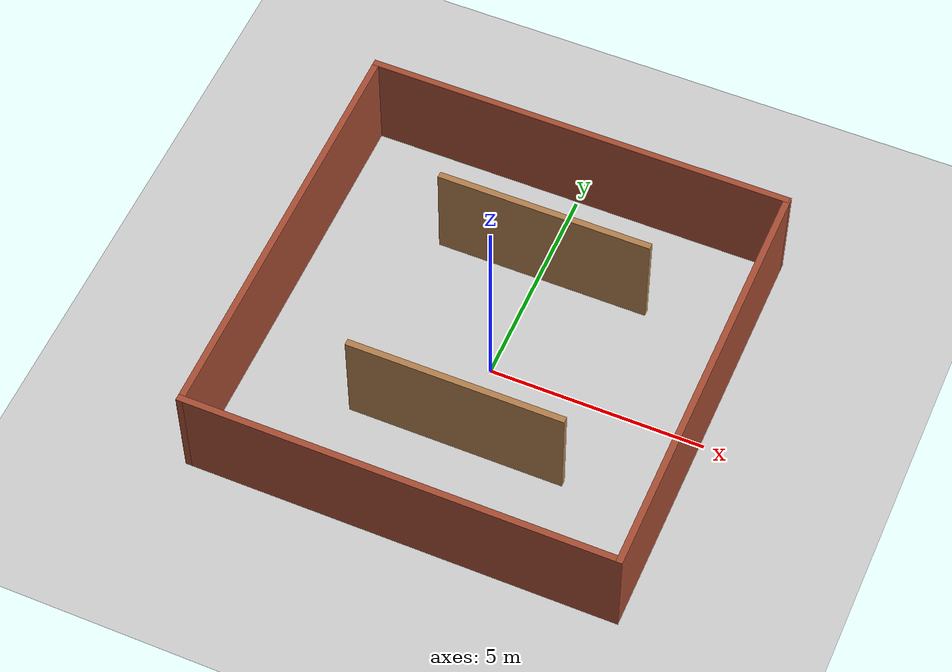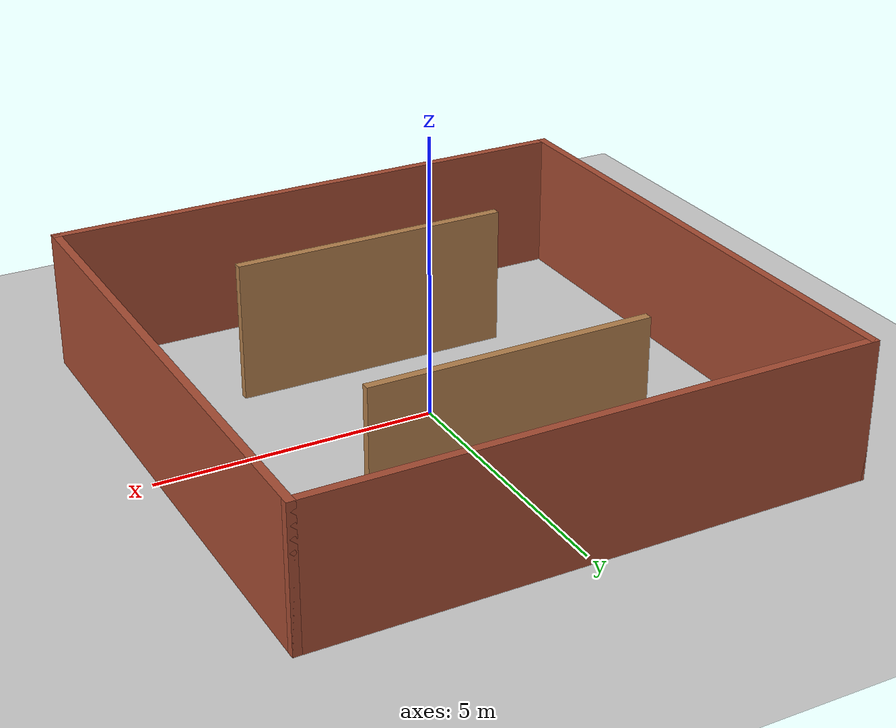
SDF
<sdf version="1.7">
 <world name="default">
  <light name="sun" type="directional">
   <pose>0 0 10 0 -0 0</pose>
   <diffuse>0.8 0.8 0.8 1</diffuse>
   <specular>0.2 0.2 0.2 1</specular>
   <attenuation>
    <range>1000</range>
    <constant>0.9</constant>
    <linear>0.01</linear>
    <quadratic>0.001</quadratic>
   </attenuation>
   <direction>-0.5 0.1 -0.9</direction>
   <spot><inner_angle>0</inner_angle><outer_angle>0</outer_angle><falloff>0</falloff></spot>
  </light>
  <model name="ground_plane">
   <static>1</static>
   <link name="link">
    <collision name="collision">
     <geometry><plane><normal>0 0 1</normal><size>100 100</size></plane></geometry>
     <surface>
      <contact><collide_bitmask>65535</collide_bitmask></contact>
      <friction><ode><mu>100</mu><mu2>50</mu2></ode></friction>
     </surface>
    </collision>
    <visual name="visual">
     <cast_shadows>0</cast_shadows>
     <geometry><plane><normal>0 0 1</normal><size>100 100</size></plane></geometry>
     <material>
      <script><uri>file://media/materials/scripts/gazebo.material</uri><name>Gazebo/Grey</name></script>
     </material>
    </visual>
   </link>
  </model>
  <gravity>0 0 -9.8</gravity>
  <magnetic_field>6e-06 2.3e-05 -4.2e-05</magnetic_field>
  <atmosphere type="adiabatic"/>
  <physics type="ode">
   <max_step_size>0.001</max_step_size>
   <real_time_factor>1</real_time_factor>
   <real_time_update_rate>1000</real_time_update_rate>
  </physics>
  <scene><ambient>0.4 0.4 0.4 1</ambient><background>0.7 0.7 0.7 1</background><shadows>1</shadows></scene>
  <spherical_coordinates>
   <surface_model>EARTH_WGS84</surface_model>
   <latitude_deg>0</latitude_deg>
   <longitude_deg>0</longitude_deg>
   <elevation>0</elevation>
   <heading_deg>0</heading_deg>
  </spherical_coordinates>
  <model name="stage">
   <pose>-0.085 0.225 0 0 -0 0</pose>
   <link name="Wall_1">
    <collision name="Wall_1_Collision">
     <geometry><box><size>10 0.15 2.5</size></box></geometry>
     <pose>0 0 1.25 0 -0 0</pose>
    </collision>
    <visual name="Wall_1_Visual">
     <pose>0 0 1.25 0 -0 0</pose>
     <geometry><box><size>10 0.15 2.5</size></box></geometry>
     <material>
      <script><uri>file://media/materials/scripts/gazebo.material</uri><name>Gazebo/Bricks</name></script>
      <ambient>1 1 1 1</ambient>
     </material>
     <meta><layer>0</layer></meta>
    </visual>
    <pose>0 4.925 0 0 -0 0</pose>
   </link>
   <link name="Wall_11">
    <collision name="Wall_11_Collision">
     <geometry><box><size>10 0.15 2.5</size></box></geometry>
     <pose>0 0 1.25 0 -0 0</pose>
    </collision>
    <visual name="Wall_11_Visual">
     <pose>0 0 1.25 0 -0 0</pose>
     <geometry><box><size>10 0.15 2.5</size></box></geometry>
     <material>
      <script><uri>file://media/materials/scripts/gazebo.material</uri><name>Gazebo/Bricks</name></script>
      <ambient>1 1 1 1</ambient>
     </material>
     <meta><layer>0</layer></meta>
    </visual>
    <pose>0 -4.925 0 0 -0 3.14159</pose>
   </link>
   <link name="Wall_12">
    <collision name="Wall_12_Collision">
     <geometry><box><size>10 0.15 2.5</size></box></geometry>
     <pose>0 0 1.25 0 -0 0</pose>
    </collision>
    <visual name="Wall_12_Visual">
     <pose>0 0 1.25 0 -0 0</pose>
     <geometry><box><size>10 0.15 2.5</size></box></geometry>
     <material>
      <script><uri>file://media/materials/scripts/gazebo.material</uri><name>Gazebo/Bricks</name></script>
      <ambient>1 1 1 1</ambient>
     </material>
     <meta><layer>0</layer></meta>
    </visual>
    <pose>-4.925 0 0 0 -0 1.5708</pose>
   </link>
   <link name="Wall_22">
    <collision name="Wall_22_Collision">
     <geometry><box><size>5 0.15 2.5</size></box></geometry>
     <pose>0 0 1.25 0 -0 0</pose>
    </collision>
    <visual name="Wall_22_Visual">
     <pose>0 0 1.25 0 -0 0</pose>
     <geometry><box><size>5 0.15 2.5</size></box></geometry>
     <material>
      <script><uri>file://media/materials/scripts/gazebo.material</uri><name>Gazebo/Wood</name></script>
      <ambient>1 1 1 1</ambient>
     </material>
     <meta><layer>0</layer></meta>
    </visual>
    <pose>0.15 2.575 0 0 -0 3.14159</pose>
   </link>
   <link name="Wall_26">
    <collision name="Wall_26_Collision">
     <geometry><box><size>5 0.15 2.5</size></box></geometry>
     <pose>0 0 1.25 0 -0 0</pose>
    </collision>
    <visual name="Wall_26_Visual">
     <pose>0 0 1.25 0 -0 0</pose>
     <geometry><box><size>5 0.15 2.5</size></box></geometry>
     <material>
      <script><uri>file://media/materials/scripts/gazebo.material</uri><name>Gazebo/Wood</name></script>
      <ambient>1 1 1 1</ambient>
     </material>
     <meta><layer>0</layer></meta>
    </visual>
    <pose>0.15 -2.275 0 0 -0 3.14159</pose>
   </link>
   <link name="Wall_28">
    <collision name="Wall_28_Collision">
     <geometry><box><size>10 0.15 2.5</size></box></geometry>
     <pose>0 0 1.25 0 -0 0</pose>
    </collision>
    <visual name="Wall_28_Visual">
     <pose>0 0 1.25 0 -0 0</pose>
     <geometry><box><size>10 0.15 2.5</size></box></geometry>
     <material>
      <script><uri>file://media/materials/scripts/gazebo.material</uri><name>Gazebo/Bricks</name></script>
      <ambient>1 1 1 1</ambient>
     </material>
     <meta><layer>0</layer></meta>
    </visual>
    <pose>4.925 0 0 0 -0 1.5708</pose>
   </link>
   <static>1</static>
  </model>
 </world>
</sdf>
